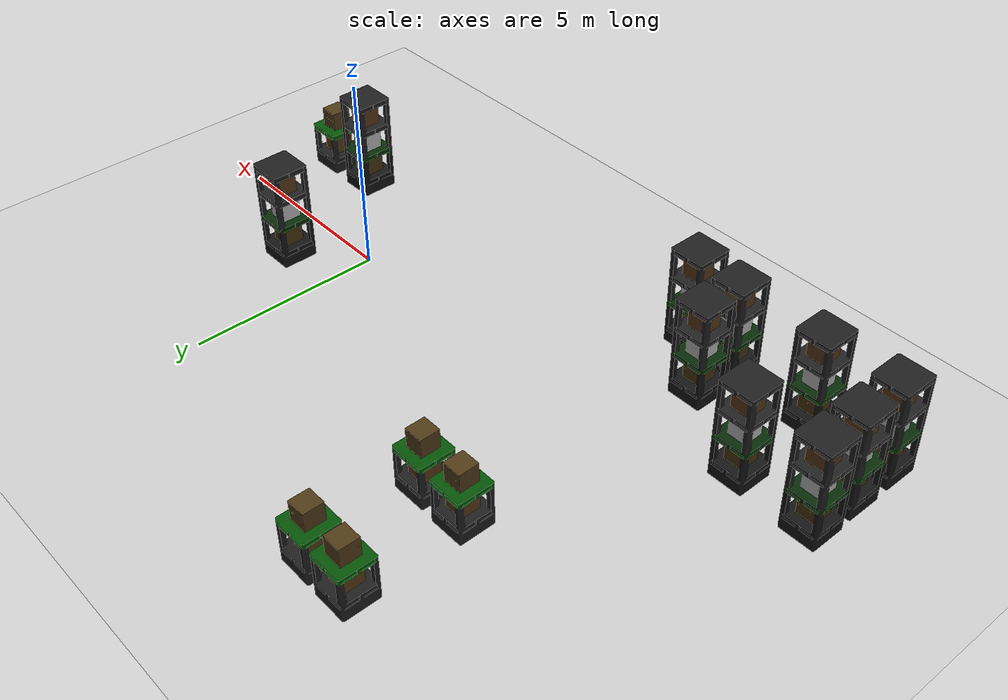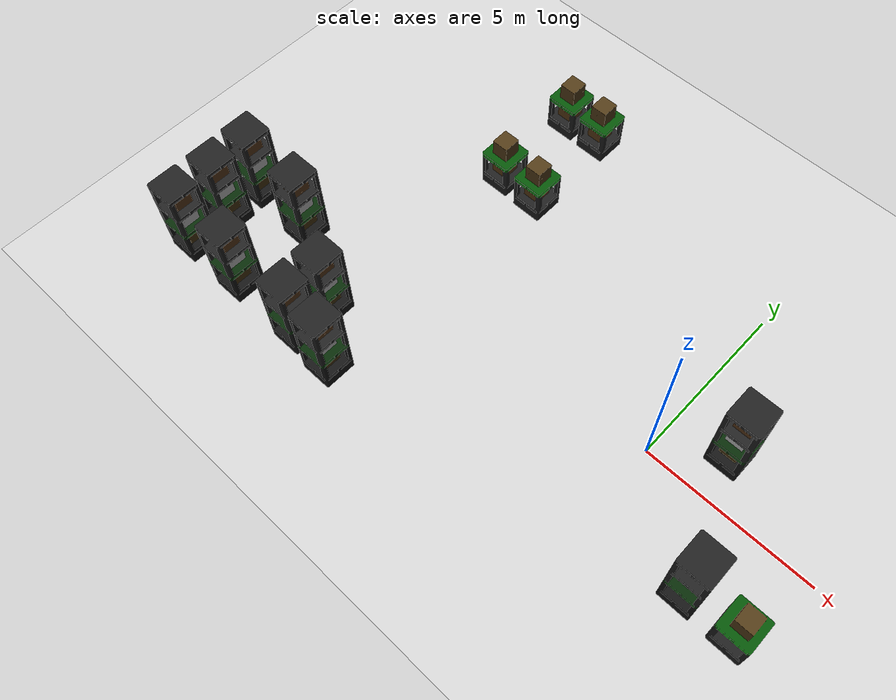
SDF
<sdf version="1.10">
 <world name="default">
  <physics name="1ms" type="ignored">
   <max_step_size>0.001</max_step_size>
   <real_time_factor>1</real_time_factor>
   <real_time_update_rate>1000</real_time_update_rate>
  </physics>
  <gravity>0 0 -9.8000000000000007</gravity>
  <magnetic_field>5.5644999999999998e-06 2.2875799999999999e-05 -4.2388400000000002e-05</magnetic_field>
  <atmosphere type="adiabatic"/>
  <scene>
   <ambient>0.800000006 0.800000006 0.800000006 1</ambient>
   <background>0.8 0.8 0.8 1</background>
   <shadows>true</shadows>
  </scene>
  <model name="ground_plane">
   <static>true</static>
   <link name="link">
    <collision name="collision">
     <geometry><plane><normal>0 0 1</normal><size>100 100</size></plane></geometry>
    </collision>
    <visual name="visual">
     <geometry><plane><normal>0 0 1</normal><size>100 100</size></plane></geometry>
     <material>
      <ambient>0.800000012 0.800000012 0.800000012 1</ambient>
      <diffuse>0.800000012 0.800000012 0.800000012 1</diffuse>
      <specular>0.800000012 0.800000012 0.800000012 1</specular>
     </material>
    </visual>
    <inertial>
     <mass>1</mass>
     <inertia><ixx>1</ixx><ixy>0</ixy><ixz>0</ixz><iyy>1</iyy><iyz>0</iyz><izz>1</izz></inertia>
    </inertial>
   </link>
  </model>
  <model name="three_palette_big_new">
   <link name="My_map">
    <inertial>
     <mass>0.1</mass>
     <inertia><ixx>1</ixx><ixy>0</ixy><ixz>0</ixz><iyy>1</iyy><iyz>0</iyz><izz>1</izz></inertia>
    </inertial>
    <collision name="collision">
     <geometry>
      <mesh>
       <uri>model://three_palette_big_new/meshes/three_palette_big_new.dae</uri>
       <scale>0.01 0.01 0.01</scale>
      </mesh>
     </geometry>
    </collision>
    <visual name="map_visual">
     <geometry>
      <mesh>
       <uri>model://three_palette_big_new/meshes/three_palette_big_new.dae</uri>
       <scale>0.01 0.01 0.01</scale>
      </mesh>
     </geometry>
    </visual>
   </link>
   <pose>-13.142 -3.71198 -0.006964 -0.002186 2e-06 1e-06</pose>
   <static>true</static>
  </model>
  <model name="three_palette_big_new_clone">
   <link name="My_map">
    <inertial>
     <mass>0.1</mass>
     <inertia><ixx>1</ixx><ixy>0</ixy><ixz>0</ixz><iyy>1</iyy><iyz>0</iyz><izz>1</izz></inertia>
    </inertial>
    <collision name="collision">
     <geometry>
      <mesh>
       <uri>model://three_palette_big_new/meshes/three_palette_big_new.dae</uri>
       <scale>0.01 0.01 0.01</scale>
      </mesh>
     </geometry>
    </collision>
    <visual name="map_visual">
     <geometry>
      <mesh>
       <uri>model://three_palette_big_new/meshes/three_palette_big_new.dae</uri>
       <scale>0.01 0.01 0.01</scale>
      </mesh>
     </geometry>
    </visual>
   </link>
   <pose>-13.1533 -2.45106 -0.006972 -0.002191 -1e-06 -0</pose>
   <static>true</static>
  </model>
  <model name="three_palette_big_new_clone_0">
   <link name="My_map">
    <inertial>
     <mass>0.1</mass>
     <inertia><ixx>1</ixx><ixy>0</ixy><ixz>0</ixz><iyy>1</iyy><iyz>0</iyz><izz>1</izz></inertia>
    </inertial>
    <collision name="collision">
     <geometry>
      <mesh>
       <uri>model://three_palette_big_new/meshes/three_palette_big_new.dae</uri>
       <scale>0.01 0.01 0.01</scale>
      </mesh>
     </geometry>
    </collision>
    <visual name="map_visual">
     <geometry>
      <mesh>
       <uri>model://three_palette_big_new/meshes/three_palette_big_new.dae</uri>
       <scale>0.01 0.01 0.01</scale>
      </mesh>
     </geometry>
    </visual>
   </link>
   <pose>-13.1814 -1.24749 -0.006973 -0.002185 3e-06 -0</pose>
   <static>true</static>
  </model>
  <model name="three_palette_big_new_clone_1">
   <link name="My_map">
    <inertial>
     <mass>0.1</mass>
     <inertia><ixx>1</ixx><ixy>0</ixy><ixz>0</ixz><iyy>1</iyy><iyz>0</iyz><izz>1</izz></inertia>
    </inertial>
    <collision name="collision">
     <geometry>
      <mesh>
       <uri>model://three_palette_big_new/meshes/three_palette_big_new.dae</uri>
       <scale>0.01 0.01 0.01</scale>
      </mesh>
     </geometry>
    </collision>
    <visual name="map_visual">
     <geometry>
      <mesh>
       <uri>model://three_palette_big_new/meshes/three_palette_big_new.dae</uri>
       <scale>0.01 0.01 0.01</scale>
      </mesh>
     </geometry>
    </visual>
   </link>
   <pose>-11.2242 -3.6994 -0.006963 -0.002178 0 0</pose>
   <static>true</static>
  </model>
  <model name="three_palette_big_new_clone_1_clone">
   <link name="My_map">
    <inertial>
     <mass>0.1</mass>
     <inertia><ixx>1</ixx><ixy>0</ixy><ixz>0</ixz><iyy>1</iyy><iyz>0</iyz><izz>1</izz></inertia>
    </inertial>
    <collision name="collision">
     <geometry>
      <mesh>
       <uri>model://three_palette_big_new/meshes/three_palette_big_new.dae</uri>
       <scale>0.01 0.01 0.01</scale>
      </mesh>
     </geometry>
    </collision>
    <visual name="map_visual">
     <geometry>
      <mesh>
       <uri>model://three_palette_big_new/meshes/three_palette_big_new.dae</uri>
       <scale>0.01 0.01 0.01</scale>
      </mesh>
     </geometry>
    </visual>
   </link>
   <pose>-11.2124 -1.31149 -0.006965 -0.002176 -1.5e-05 0</pose>
   <static>true</static>
  </model>
  <model name="three_palette_big_new_clone_1_clone_clone">
   <link name="My_map">
    <inertial>
     <mass>0.1</mass>
     <inertia><ixx>1</ixx><ixy>0</ixy><ixz>0</ixz><iyy>1</iyy><iyz>0</iyz><izz>1</izz></inertia>
    </inertial>
    <collision name="collision">
     <geometry>
      <mesh>
       <uri>model://three_palette_big_new/meshes/three_palette_big_new.dae</uri>
       <scale>0.01 0.01 0.01</scale>
      </mesh>
     </geometry>
    </collision>
    <visual name="map_visual">
     <geometry>
      <mesh>
       <uri>model://three_palette_big_new/meshes/three_palette_big_new.dae</uri>
       <scale>0.01 0.01 0.01</scale>
      </mesh>
     </geometry>
    </visual>
   </link>
   <pose>-8.87475 -3.70443 -0.006966 -0.002183 1e-06 -0</pose>
   <static>true</static>
  </model>
  <model name="three_palette_big_new_clone_1_clone_clone_0">
   <link name="My_map">
    <inertial>
     <mass>0.1</mass>
     <inertia><ixx>1</ixx><ixy>0</ixy><ixz>0</ixz><iyy>1</iyy><iyz>0</iyz><izz>1</izz></inertia>
    </inertial>
    <collision name="collision">
     <geometry>
      <mesh>
       <uri>model://three_palette_big_new/meshes/three_palette_big_new.dae</uri>
       <scale>0.01 0.01 0.01</scale>
      </mesh>
     </geometry>
    </collision>
    <visual name="map_visual">
     <geometry>
      <mesh>
       <uri>model://three_palette_big_new/meshes/three_palette_big_new.dae</uri>
       <scale>0.01 0.01 0.01</scale>
      </mesh>
     </geometry>
    </visual>
   </link>
   <pose>-8.87731 -2.56256 -0.006964 -0.002184 4e-06 0</pose>
   <static>true</static>
  </model>
  <model name="three_palette_big_new_0">
   <link name="My_map">
    <inertial>
     <mass>0.1</mass>
     <inertia><ixx>1</ixx><ixy>0</ixy><ixz>0</ixz><iyy>1</iyy><iyz>0</iyz><izz>1</izz></inertia>
    </inertial>
    <collision name="collision">
     <geometry>
      <mesh>
       <uri>model://three_palette_big_new/meshes/three_palette_big_new.dae</uri>
       <scale>0.01 0.01 0.01</scale>
      </mesh>
     </geometry>
    </collision>
    <visual name="map_visual">
     <geometry>
      <mesh>
       <uri>model://three_palette_big_new/meshes/three_palette_big_new.dae</uri>
       <scale>0.01 0.01 0.01</scale>
      </mesh>
     </geometry>
    </visual>
   </link>
   <pose>1.59769 1.29301 -0.006954 -0.00217 -1.2e-05 0</pose>
   <static>true</static>
  </model>
  <model name="two_plate_big_new">
   <link name="My_map">
    <inertial>
     <mass>0.1</mass>
     <inertia><ixx>1</ixx><ixy>0</ixy><ixz>0</ixz><iyy>1</iyy><iyz>0</iyz><izz>1</izz></inertia>
    </inertial>
    <collision name="collision">
     <geometry>
      <mesh><uri>model://two_plate_big_new/meshes/two_plate_big_new.dae</uri><scale>0.01 0.01 0.01</scale></mesh>
     </geometry>
    </collision>
    <visual name="map_visual">
     <geometry>
      <mesh><uri>model://two_plate_big_new/meshes/two_plate_big_new.dae</uri><scale>0.01 0.01 0.01</scale></mesh>
     </geometry>
    </visual>
   </link>
   <pose>-8.38023 3.88236 -0.009331 -0.003348 1e-06 0</pose>
   <static>true</static>
  </model>
  <model name="two_plate_big_new_clone">
   <link name="My_map">
    <inertial>
     <mass>0.1</mass>
     <inertia><ixx>1</ixx><ixy>0</ixy><ixz>0</ixz><iyy>1</iyy><iyz>0</iyz><izz>1</izz></inertia>
    </inertial>
    <collision name="collision">
     <geometry>
      <mesh><uri>model://two_plate_big_new/meshes/two_plate_big_new.dae</uri><scale>0.01 0.01 0.01</scale></mesh>
     </geometry>
    </collision>
    <visual name="map_visual">
     <geometry>
      <mesh><uri>model://two_plate_big_new/meshes/two_plate_big_new.dae</uri><scale>0.01 0.01 0.01</scale></mesh>
     </geometry>
    </visual>
   </link>
   <pose>-8.36192 6.74921 -0.009328 -0.003345 3e-06 0</pose>
   <static>true</static>
  </model>
  <model name="two_plate_big_new_clone_clone">
   <link name="My_map">
    <inertial>
     <mass>0.1</mass>
     <inertia><ixx>1</ixx><ixy>0</ixy><ixz>0</ixz><iyy>1</iyy><iyz>0</iyz><izz>1</izz></inertia>
    </inertial>
    <collision name="collision">
     <geometry>
      <mesh><uri>model://two_plate_big_new/meshes/two_plate_big_new.dae</uri><scale>0.01 0.01 0.01</scale></mesh>
     </geometry>
    </collision>
    <visual name="map_visual">
     <geometry>
      <mesh><uri>model://two_plate_big_new/meshes/two_plate_big_new.dae</uri><scale>0.01 0.01 0.01</scale></mesh>
     </geometry>
    </visual>
   </link>
   <pose>-7.19998 6.74111 -0.009333 -0.00337 -1e-06 0</pose>
   <static>true</static>
  </model>
  <model name="two_plate_big_new_0">
   <link name="My_map">
    <inertial>
     <mass>0.1</mass>
     <inertia><ixx>1</ixx><ixy>0</ixy><ixz>0</ixz><iyy>1</iyy><iyz>0</iyz><izz>1</izz></inertia>
    </inertial>
    <collision name="collision">
     <geometry>
      <mesh><uri>model://two_plate_big_new/meshes/two_plate_big_new.dae</uri><scale>0.01 0.01 0.01</scale></mesh>
     </geometry>
    </collision>
    <visual name="map_visual">
     <geometry>
      <mesh><uri>model://two_plate_big_new/meshes/two_plate_big_new.dae</uri><scale>0.01 0.01 0.01</scale></mesh>
     </geometry>
    </visual>
   </link>
   <pose>-7.1284 3.85439 -0.009322 -0.003364 -9e-06 -2e-06</pose>
   <static>true</static>
  </model>
  <model name="three_palette_big_new_clone_1_clone_clone_1">
   <link name="My_map">
    <inertial>
     <mass>0.1</mass>
     <inertia><ixx>1</ixx><ixy>0</ixy><ixz>0</ixz><iyy>1</iyy><iyz>0</iyz><izz>1</izz></inertia>
    </inertial>
    <collision name="collision">
     <geometry>
      <mesh>
       <uri>model://three_palette_big_new/meshes/three_palette_big_new.dae</uri>
       <scale>0.01 0.01 0.01</scale>
      </mesh>
     </geometry>
    </collision>
    <visual name="map_visual">
     <geometry>
      <mesh>
       <uri>model://three_palette_big_new/meshes/three_palette_big_new.dae</uri>
       <scale>0.01 0.01 0.01</scale>
      </mesh>
     </geometry>
    </visual>
   </link>
   <pose>-7.56932 -3.80567 -0.006967 -0.002193 -9e-06 0</pose>
   <static>true</static>
  </model>
  <model name="three_palette_big_new_clone_1_clone_clone_1_clone">
   <link name="My_map">
    <inertial>
     <mass>0.1</mass>
     <inertia><ixx>1</ixx><ixy>0</ixy><ixz>0</ixz><iyy>1</iyy><iyz>0</iyz><izz>1</izz></inertia>
    </inertial>
    <collision name="collision">
     <geometry>
      <mesh>
       <uri>model://three_palette_big_new/meshes/three_palette_big_new.dae</uri>
       <scale>0.01 0.01 0.01</scale>
      </mesh>
     </geometry>
    </collision>
    <visual name="map_visual">
     <geometry>
      <mesh>
       <uri>model://three_palette_big_new/meshes/three_palette_big_new.dae</uri>
       <scale>0.01 0.01 0.01</scale>
      </mesh>
     </geometry>
    </visual>
   </link>
   <pose>2.82698 -2.17262 -0.006966 -0.002183 1e-06 -0</pose>
   <static>true</static>
  </model>
  <model name="two_plate_big_new_clone_0">
   <link name="My_map">
    <inertial>
     <mass>0.1</mass>
     <inertia><ixx>1</ixx><ixy>0</ixy><ixz>0</ixz><iyy>1</iyy><iyz>0</iyz><izz>1</izz></inertia>
    </inertial>
    <collision name="collision">
     <geometry>
      <mesh><uri>model://two_plate_big_new/meshes/two_plate_big_new.dae</uri><scale>0.01 0.01 0.01</scale></mesh>
     </geometry>
    </collision>
    <visual name="map_visual">
     <geometry>
      <mesh><uri>model://two_plate_big_new/meshes/two_plate_big_new.dae</uri><scale>0.01 0.01 0.01</scale></mesh>
     </geometry>
    </visual>
   </link>
   <pose>4.26323 -2.19644 -0.009332 -0.003351 1e-06 -0</pose>
   <static>true</static>
  </model>
  <light name="sun" type="directional">
   <pose>0 0 10 0 0 0</pose>
   <intensity>1</intensity>
   <direction>-0.5 0.10000000000000001 -0.90000000000000002</direction>
   <diffuse>0.800000012 0.800000012 0.800000012 1</diffuse>
   <specular>0.200000003 0.200000003 0.200000003 1</specular>
   <attenuation>
    <range>1000</range>
    <linear>0.01</linear>
    <constant>0.90000000000000002</constant>
    <quadratic>0.001</quadratic>
   </attenuation>
   <spot><inner_angle>0</inner_angle><outer_angle>0</outer_angle><falloff>0</falloff></spot>
  </light>
 </world>
</sdf>
